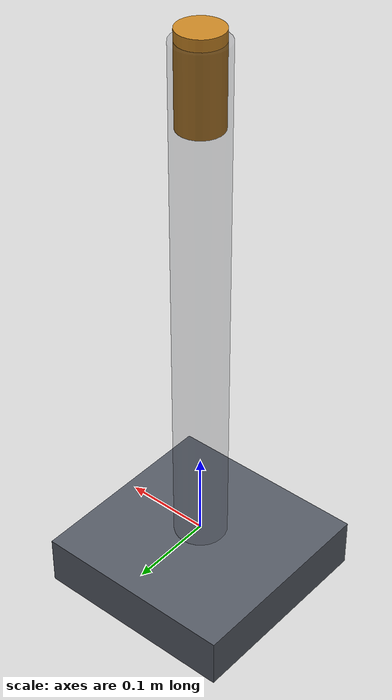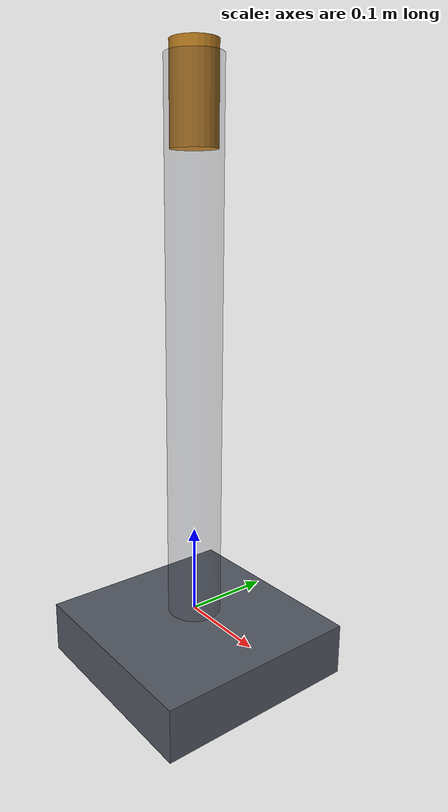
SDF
<?xml version="1.0" ?>
<!--
  T4 — peak impact load world.
  The tactile runner spawns the sensor separately at the origin. This world
  provides a 1 kg impact cylinder already positioned for a 0.5 m drop.
-->
<sdf version="1.6">
  <world name="tactile_t4_peak_load">
    <scene>
      <ambient>0.76 0.76 0.76 1</ambient>
      <background>0.94 0.95 0.98 1</background>
    </scene>

    <gravity>0 0 -9.81</gravity>

    <include>
      <uri>model://sun</uri>
    </include>

    <model name="t4_mount_base">
      <static>true</static>
      <pose>0 0 -0.04 0 0 0</pose>
      <link name="link">
        <collision name="collision">
          <geometry>
            <box>
              <size>0.24 0.24 0.06</size>
            </box>
          </geometry>
        </collision>
        <visual name="visual">
          <geometry>
            <box>
              <size>0.24 0.24 0.06</size>
            </box>
          </geometry>
          <material>
            <ambient>0.33 0.35 0.39 1</ambient>
            <diffuse>0.33 0.35 0.39 1</diffuse>
          </material>
        </visual>
      </link>
    </model>

    <model name="t4_guide_frame">
      <static>true</static>
      <pose>0 0 0.30 0 0 0</pose>
      <link name="link">
        <visual name="guide">
          <geometry>
            <cylinder>
              <radius>0.0305</radius>
              <length>0.60</length>
            </cylinder>
          </geometry>
          <material>
            <ambient>0.18 0.20 0.24 0.15</ambient>
            <diffuse>0.18 0.20 0.24 0.15</diffuse>
          </material>
        </visual>
      </link>
    </model>

    <model name="t4_impactor">
      <static>false</static>
      <pose>0 0 0.56225 0 0 0</pose>
      <link name="body">
        <inertial>
          <mass>1.0</mass>
          <inertia>
            <ixx>1.145833333333e-03</ixx>
            <iyy>1.145833333333e-03</iyy>
            <izz>3.125000000000e-04</izz>
            <ixy>0</ixy>
            <ixz>0</ixz>
            <iyz>0</iyz>
          </inertia>
        </inertial>
        <collision name="collision">
          <geometry>
            <cylinder>
              <radius>0.025</radius>
              <length>0.10</length>
            </cylinder>
          </geometry>
          <surface>
            <contact>
              <collide_bitmask>0x01</collide_bitmask>
            </contact>
          </surface>
        </collision>
        <visual name="visual">
          <geometry>
            <cylinder>
              <radius>0.025</radius>
              <length>0.10</length>
            </cylinder>
          </geometry>
          <material>
            <ambient>0.78 0.52 0.14 1</ambient>
            <diffuse>0.78 0.52 0.14 1</diffuse>
          </material>
        </visual>
      </link>
    </model>
  </world>
</sdf>
